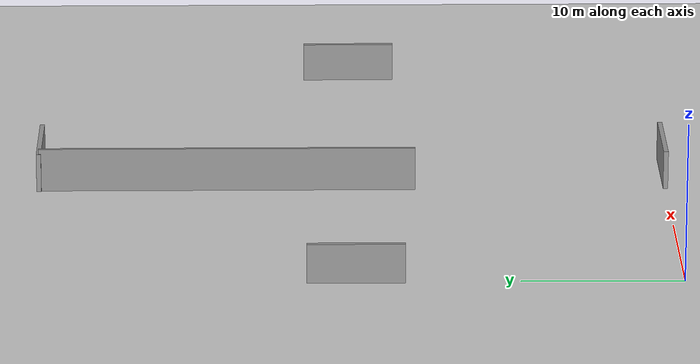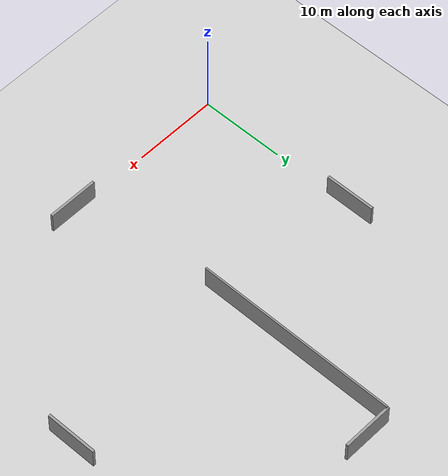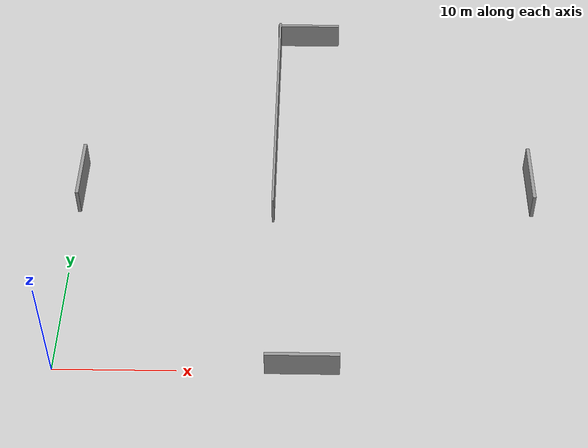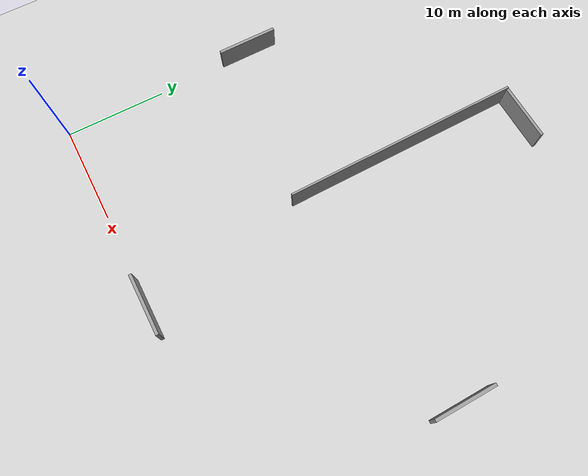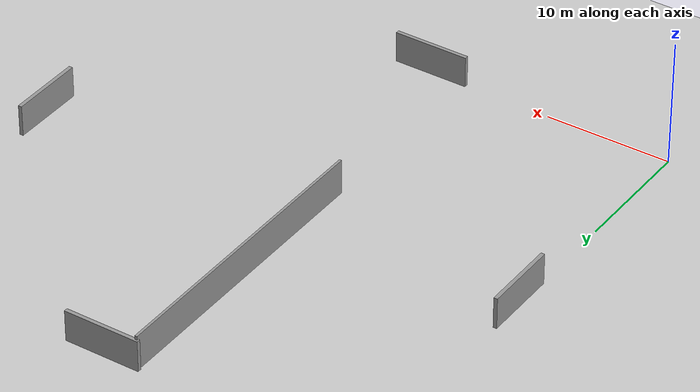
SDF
<sdf version="1.4">
 <world name="default">
  <scene><shadows>0</shadows></scene>
  <physics type="ode">
   <gravity>0 0 -9.81</gravity>
   <ode>
    <solver><type>quick</type><iters>20</iters><sor>1.0</sor></solver>
    <constraints>
     <cfm>0.0</cfm>
     <erp>0.2</erp>
     <contact_max_correcting_vel>100.0</contact_max_correcting_vel>
     <contact_surface_layer>0.0</contact_surface_layer>
    </constraints>
   </ode>
   <real_time_update_rate>1000</real_time_update_rate>
   <max_step_size>0.001</max_step_size>
  </physics>
  <include><uri>model://sun</uri></include>
  <include><uri>model://ground_plane</uri></include>
  <include><uri>model://w1</uri><name>w1_bottom</name><pose>0 20 0.0 0 0.0 -1.57</pose></include>
  <include><uri>model://w1</uri><name>w1_left</name><pose>20 40 0.0 0 0.0 0.0</pose></include>
  <include><uri>model://w1</uri><name>w1_top</name><pose>40 20.0 0.0 0 0.0 -1.57</pose></include>
  <include><uri>model://w1</uri><name>w1_right</name><pose>20 0 0.0 0 0.0 0.0</pose></include>
  <include><uri>model://w2_1room</uri><name>w4_warehouse_4</name><pose>17.2 28 0.0 0 0.0 1.57</pose></include>
 </world>
</sdf>

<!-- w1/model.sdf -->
<sdf version="1.5">
  <model name="grey_wall">
    <static>true</static>
    <link name="link">
      <pose>0 0 1.25 0 0 0</pose>
      <collision name="collision">
        <geometry>
          <box>
            <size>6 0.3 2.5</size>
          </box>
        </geometry>
      </collision>
      <visual name="visual">
        <cast_shadows>false</cast_shadows>
        <geometry>
          <box>
            <size>6 0.3 2.5</size>
          </box>
        </geometry>
        <material>
          <script>
            <uri>model://w1/materials/scripts</uri>
            <uri>model://w1/materials/textures</uri>
            <name>vrc/grey_wall</name>
          </script>
        </material>
      </visual>
    </link>
  </model>
</sdf>

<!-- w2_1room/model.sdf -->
<sdf version="1.5">
  <model name="grey_wall">
    <static>true</static>
    <link name="link">
      <pose>0 0 1.4 0 0 0</pose>
      <collision name="collision">
        <geometry>
          <box>
            <size>24 0.2 2.8</size>
          </box>
        </geometry>
      </collision>
      <visual name="visual">
        <cast_shadows>false</cast_shadows>
        <geometry>
          <box>
            <size>24 0.2 2.8</size>
          </box>
        </geometry>
        <material>
          <script>
            <uri>model://w2/materials/scripts</uri>
            <uri>model://w2/materials/textures</uri>
            <name>vrc/grey_wall</name>
          </script>
        </material>
      </visual>
    </link>
  </model>
</sdf>
